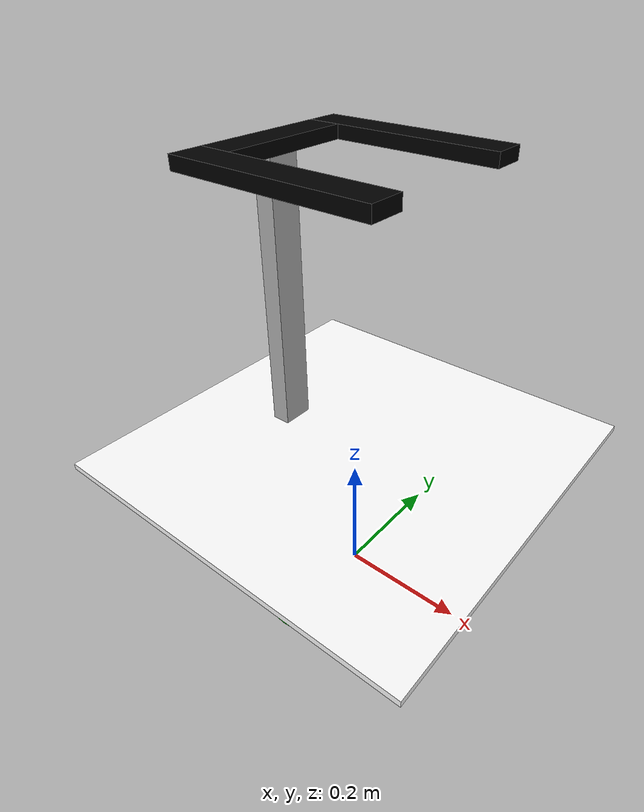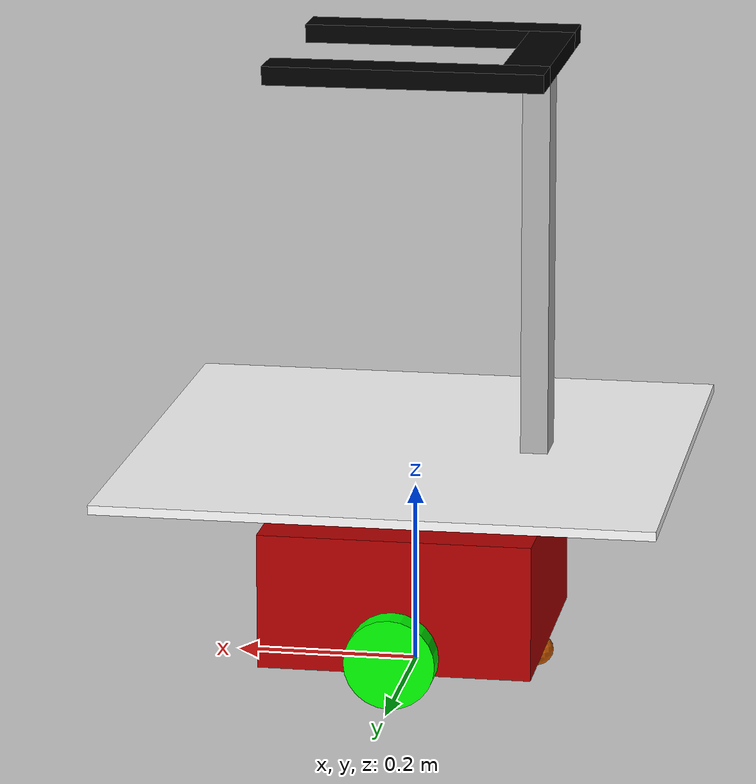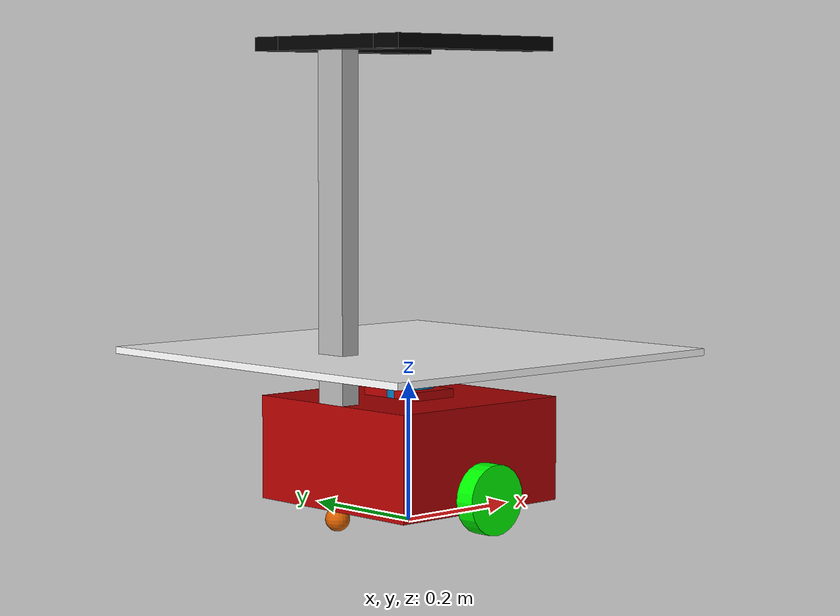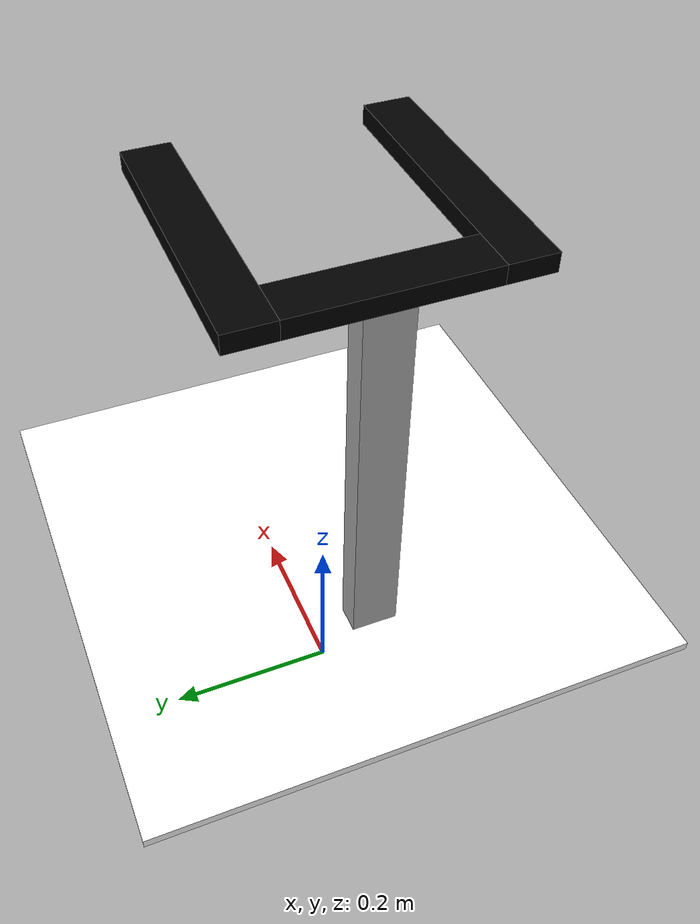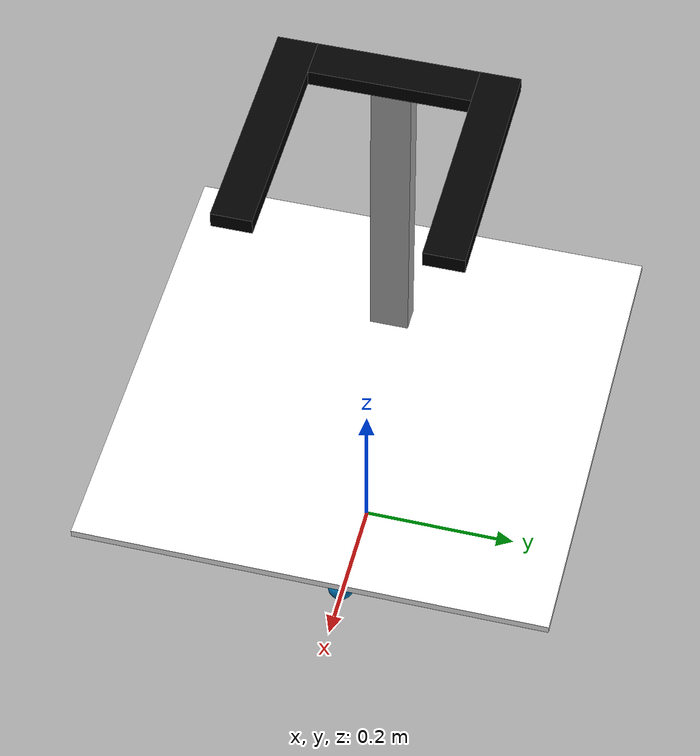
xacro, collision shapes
<?xml version="1.0" ?>
<robot name="krever" xmlns:xacro="http://ros.org/wiki/xacro">

    <xacro:arg name="use_ros2_control" default="true"/>
    <xacro:arg name="sim_mode" default="false"/>

    <xacro:include filename="krever_core.xacro"/>

    <xacro:if value="$(arg use_ros2_control)">
        <xacro:include filename="ros2_control.xacro"/>
    </xacro:if>

    <xacro:unless value="$(arg use_ros2_control)">
        <xacro:include filename="gazebo_control.xacro"/>
    </xacro:unless>

    <xacro:include filename="imu.xacro"/>
    <xacro:include filename="lidar.xacro"/>

</robot>

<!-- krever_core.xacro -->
<robot name='krever' xmlns:xacro="http://ros.org/wiki/xacro">

  <xacro:include filename="inertial_macros.xacro"/>

  <!-- Robot's base properties -->
  <xacro:property name="base_length" value="0.3"/>
  <xacro:property name="base_width" value="0.3"/>
  <xacro:property name="base_height" value="0.15"/>

  <!-- Robot's wheel properties -->
  <xacro:property name="wheel_radius" value="0.05"/>
  <xacro:property name="wheel_height" value="0.03"/>
  <xacro:property name="wheel_mass" value="0.15"/>

  <!-- Distance between centre of wheel and robot base -->
  <xacro:property name="wheel_zoff" value="0.33"/>

  <link name="base_footprint"/>

   <joint name="base_joint" type="fixed">
     <parent link="base_footprint"/>
     <child link="base_link"/>
     <origin xyz="0 0 0" rpy="0 0 0"/>
   </joint>

  <!-- Robot base chasis-->
  <link name="base_link">
      <visual>
          <geometry>
              <box size="0.3 0.3 0.15"/>
          </geometry>
          <origin xyz="0 0 0.105" rpy="0 0 0"/>
          <material name="red"/>
      </visual>

      <collision>
          <geometry>
              <box size="0.3 0.3 0.15"/>
          </geometry>
          <origin xyz="0 0 0.105" rpy="0 0 0"/>
          <material name="red"/>
      </collision>

      <!-- Rplidar base -->
      <visual name="rplidar_base_visual">
        <origin xyz="0 0 0.175" rpy="0 0 ${-pi/2}"/>
          <geometry>
            <mesh filename="package://krever_description/meshes/rplidar_base.dae"/>
          </geometry>
        </visual>
      <collision name="rplidar_base_collision">
        <origin xyz="0 0 0.175" rpy="0 0 ${-pi/2}"/>
        <geometry>
          <box size="0.11 0.072 0.035"/>
        </geometry>
      </collision>

    <xacro:box_inertia mass="0.864" length="${base_length}" width="${base_width}" height="${base_height}">
      <origin xyz="0 0 0.175" rpy="0 0 0"/>
    </xacro:box_inertia>
  </link>

  <!-- Left wheel -->
  <link name="left_wheel">
    <visual>
        <geometry>
            <cylinder radius="0.05" length="0.03"/>
        </geometry>
        <origin xyz="0 0 0" rpy="1.57 0 0"/>
        <material name="green"/>
    </visual>
    <collision>
        <geometry>
            <cylinder radius="0.05" length="0.03"/>
        </geometry>
        <origin xyz="0 0 0" rpy="1.57 0 0"/>
        <material name="green"/>
    </collision>

    <xacro:cylinder_inertia mass="${wheel_mass}" length="${wheel_height}" radius="${wheel_radius}">
      <origin xyz="0 0 0" rpy="0 0 0"/>
    </xacro:cylinder_inertia>
  </link>

  <joint name="left_wheel_joint" type="continuous">
    <parent link="base_link"/>
    <child link="left_wheel"/>
    <origin xyz="0 0.165 0.05" rpy="0 0 0"/>
    <axis xyz="0 1 0"/>
  </joint>

  <!-- Right wheel -->
  <link name="right_wheel">
    <visual>
        <geometry>
            <cylinder radius="0.05" length="0.03"/>
        </geometry>
        <origin xyz="0 0 0" rpy="1.57 0 0"/>
        <material name="green"/>
    </visual>
    <collision>
        <geometry>
            <cylinder radius="0.05" length="0.03"/>
        </geometry>
        <origin xyz="0 0 0" rpy="1.57 0 0"/>
        <material name="green"/>
    </collision>

    <xacro:cylinder_inertia mass="${wheel_mass}" length="${wheel_height}" radius="${wheel_radius}">
      <origin xyz="0 0 0" rpy="0 0 0"/>
    </xacro:cylinder_inertia>
  </link>

  <joint name="right_wheel_joint" type="continuous">
    <parent link="base_link"/>
    <child link="right_wheel"/>
    <origin xyz="0 -0.165 0.05" rpy="0 0 0"/>
    <axis xyz="0 1 0"/>
  </joint>

  <!-- Caster wheel -->
  <link name="caster_wheel">
    <visual>
      <geometry>
        <mesh filename="package://krever_description/meshes/caster_wheel.dae"/>
      </geometry>
    </visual>
    <collision>
      <origin xyz="0 0 0" rpy="0 0 ${pi/2}"/>
      <geometry>
        <sphere radius="0.0175"/>
      </geometry>
    </collision>

    <xacro:sphere_inertia mass="0.033" radius="0.025">
      <origin xyz="0 0 0" rpy="0 0 0"/>
    </xacro:sphere_inertia>
  </link>

  <joint name="caster_wheel_joint" type="fixed">
    <parent link="base_link"/>
    <child link="caster_wheel"/>
    <origin xyz="0.1375 0 0.0175" rpy="0 0 ${pi/2}"/>
  </joint>

  <gazebo reference="caster_wheel">
    <mu1 value="0.001"/>
    <mu2 value="0.001"/>
  </gazebo>

  <!-- Caster wheel2 -->
  <link name="caster_wheel2">
    <visual>
      <geometry>
        <mesh filename="package://krever_description/meshes/caster_wheel.dae"/>
      </geometry>
    </visual>
    <collision>
      <origin xyz="0 0 0" rpy="0 0 ${pi/2}"/>
      <geometry>
        <sphere radius="0.0175"/>
      </geometry>
    </collision>

    <xacro:sphere_inertia mass="0.033" radius="0.025">
      <origin xyz="0 0 0" rpy="0 0 0"/>
    </xacro:sphere_inertia>
  </link>

  <joint name="caster_wheel_joint2" type="fixed">
    <parent link="base_link"/>
    <child link="caster_wheel2"/>
    <origin xyz="-0.1375 0 0.0175" rpy="0 0 ${pi/2}"/>
  </joint>

  <gazebo reference="caster_wheel2">
    <mu1 value="0.001"/>
    <mu2 value="0.001"/>
  </gazebo>

  <gazebo reference="left_wheel">
    <mu1 value="1.16"/>
    <mu2 value="1.16"/>
  </gazebo>

  <gazebo reference="right_wheel">
    <mu1 value="1.16"/>
    <mu2 value="1.16"/>
  </gazebo>

  <!--colors-->
    <material name="green">
        <color rgba="0 1 0 1"/>
    </material>

    <material name="blue">
        <color rgba="0 0 0.7 1"/>
    </material>

    <material name="red">
        <color rgba="0.7 0 0 1"/>
    </material>

    !--supporint rod-->
    <link name="support_rod">
        <visual>
            <geometry>
                <box size="0.03 0.05 0.5" />
            </geometry>
            <material name="LightGrey">
                <color rgba="0.7 0.7 0.7 1.0"/>
            </material>
        </visual>
        <collision>
            <geometry>
                <box size="0.03 0.05 0.5" />
            </geometry>
        </collision>

        <inertial>
            <origin xyz="0.0 0.0 0.0" rpy="0.0 0.0 0.0"/>
            <mass value="5"/>
            <inertia ixx="0.105" ixy="0.0" ixz="0.0" iyy="0.104" iyz="0.0" izz="0.0014"/>
        </inertial>

    </link>

    <joint name="base_suppot_joint" type="fixed">
        <origin xyz="-0.135 0. 0.425" rpy="0.0 0.0 0.0"/>
        <parent link="base_link"/>
        <child link="support_rod"/>
        <limit lower="0.0" upper="0.0" effort="0.0" velocity="0.0"/>
    </joint>

    <link name="center_rod">
        <visual>
            <geometry>
                <box size="0.2 0.05 0.02" />
            </geometry>
            <material name="black">
                <color rgba="0 0 0 1"/>
            </material>
        </visual>
        <collision>
            <geometry>
                <box size="0.2 0.05 0.02" />
            </geometry>
        </collision>

        <inertial>
            <origin xyz="0.0 0.0 0.0" rpy="0.0 0.0 0.0"/>
            <mass value="2"/>
            <inertia ixx="0.002" ixy="0.0" ixz="0.0" iyy="0.027" iyz="0.0" izz="0.028"/>
        </inertial>

    </link>

    <joint name="center_rod_joint" type="fixed">
        <origin xyz="0 0 0.26" rpy="0 0 1.57"/>
        <parent link="support_rod"/>
        <child link="center_rod"/>
        <limit lower="0.0" upper="0.0" effort="0.0" velocity="0.0"/>
    </joint>

    <link name="left_rod">
        <visual>
            <geometry>
                <box size="0.3 0.05 0.02" />
            </geometry>
            <material name="black">
                <color rgba="0 0 0 1"/>
            </material>
        </visual>
        <collision>
            <geometry>
                <box size="0.3 0.05 0.02" />
            </geometry>
        </collision>

        <inertial>
            <origin xyz="0.0 0.0 0.0" rpy="0.0 0.0 0.0"/>
            <mass value="2"/>
            <inertia ixx="0.002" ixy="0.0" ixz="0.0" iyy="0.06" iyz="0.0" izz="0.061"/>
        </inertial>

    </link>

    <joint name="left_rod_joint" type="fixed">
        <origin xyz="0.125 0.125 0.26" rpy="0.0 0.0 0"/>
        <parent link="support_rod"/>
        <child link="left_rod"/>
        <limit lower="0.0" upper="0.0" effort="0.0" velocity="0.0"/>
    </joint>

    <link name="right_rod">
        <visual>
            <geometry>
                <box size="0.3 0.05 0.02" />
            </geometry>
            <material name="black">
                <color rgba="0 0 0 1"/>
            </material>
        </visual>
        <collision>
            <geometry>
                <box size="0.3 0.05 0.02" />
            </geometry>
        </collision>

        <inertial>
            <origin xyz="0.0 0.0 0.0" rpy="0.0 0.0 0.0"/>
            <mass value="2"/>
            <inertia ixx="0.002" ixy="0.0" ixz="0.0" iyy="0.06" iyz="0.0" izz="0.061"/>
        </inertial>
    </link>

    <joint name="right_rod_joint" type="fixed">
        <origin xyz="0.125 -0.125 0.26" rpy="0.0 0.0 0"/>
        <parent link="support_rod"/>
        <child link="right_rod"/>
        <limit lower="0.0" upper="0.0" effort="0.0" velocity="0.0"/>
    </joint>

<!--tray-->
    <link name="tray">
        <visual>
            <origin xyz="0.0 0.0 0.0" rpy="0.0 0.0 0.0"/>
            <geometry>
                <box size="0.3 0.3 0.01"/>
            </geometry>
            <material name="white">
                <color rgba="1.0 1.0 1.0 1.0"/>
            </material>
        </visual>
        <collision>
            <origin xyz="0.0 0.0 0.0" rpy="0.0 0.0 0.0"/>
            <geometry>
                <box size="0.6 0.6 0.01"/>
            </geometry>
        </collision>

        <inertial>
            <origin xyz="0.0 0.0 0.0" rpy="0.0 0.0 0.0"/>
            <mass value="5"/>
            <inertia ixx="0.154" ixy="0.0" ixz="0.0" iyy="0.154" iyz="0.0" izz="0.3"/>
        </inertial>

    </link>

    <joint name="tray_joint" type="fixed">
        <origin xyz="0.135 0.0 -0.18" rpy="0.0 0.0 0.0"/>
        <parent link="support_rod"/>
        <child link="tray"/>
        <limit lower="0.0" upper="0.0" effort="0.0" velocity="0.0"/>
    </joint>

</robot>

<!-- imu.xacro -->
<robot xmlns:xacro="http://ros.org/wiki/xacro">

  <!-- Imu sensor  -->
  <link name="imu_link">
    <visual name="imu_visual">
      <geometry>
        <mesh filename="package://krever_description/meshes/MPU6050.dae"/>
      </geometry>
    </visual>
  </link>

  <joint name="imu_joint" type="fixed">
    <parent link="base_link"/>
    <child link="imu_link"/>
    <origin xyz="0.045 0 0.0175" rpy="0 0 0"/>
  </joint>

 <gazebo reference="imu_link">
   <sensor name="mpu6050_imu" type="imu">
    <plugin name="imu_controller" filename="libgazebo_ros_imu_sensor.so">
      <frame_name>imu_link</frame_name>
       <ros>
         <remapping>~/out:=imu_broadcaster/imu</remapping>
       </ros>
      <initial_orientation_as_reference>false</initial_orientation_as_reference>
    </plugin>
     <always_on>true</always_on>
     <update_rate>100</update_rate>
     <visualize>true</visualize>
     <imu>
       <angular_velocity>
         <x>
           <noise type="gaussian">
             <mean>0.0</mean>
             <stddev>2e-4</stddev>
           </noise>
         </x>
         <y>
           <noise type="gaussian">
             <mean>0.0</mean>
             <stddev>2e-4</stddev>
           </noise>
         </y>
         <z>
           <noise type="gaussian">
             <mean>0.0</mean>
             <stddev>2e-4</stddev>
           </noise>
         </z>
       </angular_velocity>
       <linear_acceleration>
         <x>
           <noise type="gaussian">
             <mean>0.0</mean>
             <stddev>1.7e-2</stddev>
           </noise>
         </x>
         <y>
           <noise type="gaussian">
             <mean>0.0</mean>
             <stddev>1.7e-2</stddev>
           </noise>
         </y>
         <z>
           <noise type="gaussian">
             <mean>0.0</mean>
             <stddev>1.7e-2</stddev>
           </noise>
         </z>
       </linear_acceleration>
       <orientation>
         <x>
           <noise type="gaussian">
              <mean>0.0</mean>
              <stddev>2e-3</stddev>
            </noise>
          </x>
          <y>
            <noise type="gaussian">
              <mean>0.0</mean>
              <stddev>2e-3</stddev>
            </noise>
          </y>
          <z>
            <noise type="gaussian">
              <mean>0.0</mean>
              <stddev>2e-3</stddev>
            </noise>
          </z>
        </orientation>
     </imu>
   </sensor>
 </gazebo>

</robot>

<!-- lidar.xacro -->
<robot xmlns:xacro="http://ros.org/wiki/xacro">

    <link name="lidar_link">
        <visual>
            <origin xyz="0 0 0" rpy="0 0 0"/>
            <geometry>
                <mesh filename="package://krever_description/meshes/rplidar_top.dae"/>
            </geometry>
        </visual>
        <collision>
            <origin xyz="0 0 0" rpy="0 0 0"/>
            <geometry>
                <cylinder radius="0.037" length="0.021"/>
            </geometry>
        </collision>
         <xacro:cylinder_inertia mass="0.07" length="0.021" radius="0.037">
            <origin xyz="0 0 0" rpy="0 0 0"/>
        </xacro:cylinder_inertia>
   </link>

    <joint name="lidar_joint" type="fixed">
        <parent link="base_link"/>
        <child link="lidar_link"/>
        <origin xyz="0 0 0.185" rpy="0 0 ${-pi/2}"/>
        <axis xyz="0 0 1"/>
    </joint>

    <gazebo reference="lidar_link">
        <sensor name="lidar" type="ray">
            <pose>0 0 0 0 0 0</pose>
            <always_on>true</always_on>
            <visualize>false</visualize>
            <update_rate>10</update_rate>
            <ray>
                <scan>
                    <horizontal>
                        <samples>360</samples>
                        <min_angle>-3.14</min_angle>
                        <max_angle>3.14</max_angle>
                    </horizontal>
                </scan>
                <range>
                    <min>0.15</min>
                    <max>6.0</max>
                    <resolution>0.01500</resolution>
		        </range>
                <noise>
                    <type>gaussian</type>
                    <mean>0.0</mean>
                    <stddev>0.01</stddev>
                </noise>
            </ray>
            <plugin name="lidar_controller" filename="libgazebo_ros_ray_sensor.so">
                <ros>
                    <remapping>~/out:=scan</remapping>
                </ros>
                <output_type>sensor_msgs/LaserScan</output_type>
                <frame_name>lidar_link</frame_name>
            </plugin>
        </sensor>
    </gazebo>

</robot>
